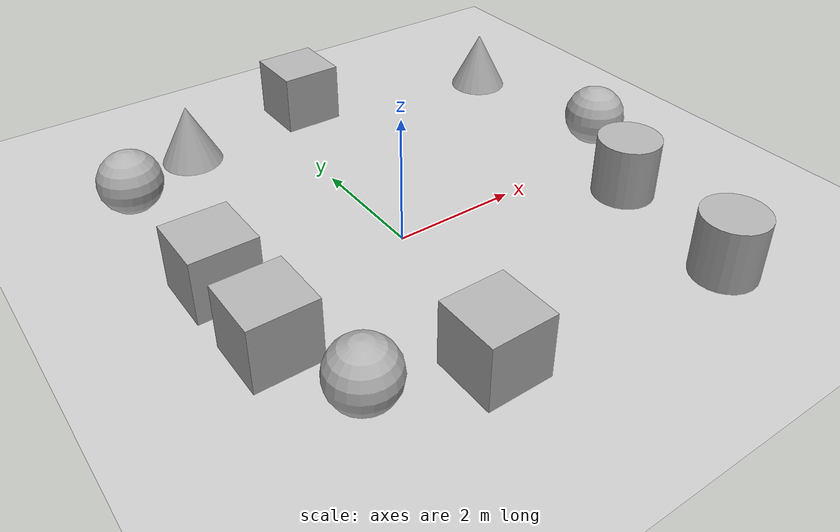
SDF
<sdf version='1.10'>
  <world name='empty'>
    <physics name='1ms' type='ignored'>
      <max_step_size>0.001</max_step_size>
      <real_time_factor>1</real_time_factor>
      <real_time_update_rate>1000</real_time_update_rate>
    </physics>
    <plugin name='gz::sim::systems::Physics' filename='gz-sim-physics-system'/>
    <plugin name='gz::sim::systems::UserCommands' filename='gz-sim-user-commands-system'/>
    <plugin name='gz::sim::systems::SceneBroadcaster' filename='gz-sim-scene-broadcaster-system'/>
    <plugin name='gz::sim::systems::Contact' filename='gz-sim-contact-system'/>
    <gravity>0 0 -9.8000000000000007</gravity>
    <magnetic_field>5.5644999999999998e-06 2.2875799999999999e-05 -4.2388400000000002e-05</magnetic_field>
    <atmosphere type='adiabatic'/>
    <scene>
      <ambient>0.400000006 0.400000006 0.400000006 1</ambient>
      <background>0.699999988 0.699999988 0.699999988 1</background>
      <shadows>true</shadows>
    </scene>
    <model name='ground_plane'>
      <static>true</static>
      <link name='link'>
        <collision name='collision'>
          <geometry>
            <plane>
              <normal>0 0 1</normal>
              <size>100 100</size>
            </plane>
          </geometry>
          <surface>
            <friction>
              <ode/>
            </friction>
            <bounce/>
            <contact/>
          </surface>
        </collision>
        <visual name='visual'>
          <geometry>
            <plane>
              <normal>0 0 1</normal>
              <size>100 100</size>
            </plane>
          </geometry>
          <material>
            <ambient>0.800000012 0.800000012 0.800000012 1</ambient>
            <diffuse>0.800000012 0.800000012 0.800000012 1</diffuse>
            <specular>0.800000012 0.800000012 0.800000012 1</specular>
          </material>
        </visual>
        <pose>0 0 0 0 0 0</pose>
        <inertial>
          <pose>0 0 0 0 0 0</pose>
          <mass>1</mass>
          <inertia>
            <ixx>1</ixx>
            <ixy>0</ixy>
            <ixz>0</ixz>
            <iyy>1</iyy>
            <iyz>0</iyz>
            <izz>1</izz>
          </inertia>
        </inertial>
        <enable_wind>false</enable_wind>
      </link>
      <pose>0 0 0 0 0 0</pose>
      <self_collide>false</self_collide>
    </model>
    <model name='box'>
      <pose>0.68315561753304532 4.2275732439294655 0.5 0 0 0</pose>
      <link name='box_link'>
        <inertial>
          <inertia>
            <ixx>0.16666</ixx>
            <ixy>0</ixy>
            <ixz>0</ixz>
            <iyy>0.16666</iyy>
            <iyz>0</iyz>
            <izz>0.16666</izz>
          </inertia>
          <mass>1</mass>
          <pose>0 0 0 0 0 0</pose>
        </inertial>
        <collision name='box_collision'>
          <geometry>
            <box>
              <size>1 1 1</size>
            </box>
          </geometry>
          <surface>
            <friction>
              <ode/>
            </friction>
            <bounce/>
            <contact/>
          </surface>
        </collision>
        <visual name='box_visual'>
          <geometry>
            <box>
              <size>1 1 1</size>
            </box>
          </geometry>
          <material>
            <ambient>0.300000012 0.300000012 0.300000012 1</ambient>
            <diffuse>0.699999988 0.699999988 0.699999988 1</diffuse>
            <specular>1 1 1 1</specular>
          </material>
        </visual>
        <pose>0 0 0 0 0 0</pose>
        <enable_wind>false</enable_wind>
      </link>
      <static>false</static>
      <self_collide>false</self_collide>
    </model>
    <model name='cone'>
      <pose>4.0975763281066353 3.2909715373316137 0.5 0 0 0</pose>
      <link name='cone_link'>
        <inertial>
          <inertia>
            <ixx>0.074999999999999997</ixx>
            <ixy>0</ixy>
            <ixz>0</ixz>
            <iyy>0.074999999999999997</iyy>
            <iyz>0</iyz>
            <izz>0.074999999999999997</izz>
          </inertia>
          <mass>1</mass>
          <pose>0 0 0 0 0 0</pose>
        </inertial>
        <collision name='cone_collision'>
          <geometry>
            <cone>
              <radius>0.5</radius>
              <length>1</length>
            </cone>
          </geometry>
          <surface>
            <friction>
              <ode/>
            </friction>
            <bounce/>
            <contact/>
          </surface>
        </collision>
        <visual name='cone_visual'>
          <geometry>
            <cone>
              <radius>0.5</radius>
              <length>1</length>
            </cone>
          </geometry>
          <material>
            <ambient>0.300000012 0.300000012 0.300000012 1</ambient>
            <diffuse>0.699999988 0.699999988 0.699999988 1</diffuse>
            <specular>1 1 1 1</specular>
          </material>
        </visual>
        <pose>0 0 0 0 0 0</pose>
        <enable_wind>false</enable_wind>
      </link>
      <static>false</static>
      <self_collide>false</self_collide>
    </model>
    <model name='sphere'>
      <pose>4.3384637299916111 0.42844435307135276 0.5 0 0 0</pose>
      <link name='sphere_link'>
        <inertial>
          <inertia>
            <ixx>0.10000000000000001</ixx>
            <ixy>0</ixy>
            <ixz>0</ixz>
            <iyy>0.10000000000000001</iyy>
            <iyz>0</iyz>
            <izz>0.10000000000000001</izz>
          </inertia>
          <mass>1</mass>
          <pose>0 0 0 0 0 0</pose>
        </inertial>
        <collision name='sphere_collision'>
          <geometry>
            <sphere>
              <radius>0.5</radius>
            </sphere>
          </geometry>
          <surface>
            <friction>
              <ode/>
            </friction>
            <bounce/>
            <contact/>
          </surface>
        </collision>
        <visual name='sphere_visual'>
          <geometry>
            <sphere>
              <radius>0.5</radius>
            </sphere>
          </geometry>
          <material>
            <ambient>0.300000012 0.300000012 0.300000012 1</ambient>
            <diffuse>0.699999988 0.699999988 0.699999988 1</diffuse>
            <specular>1 1 1 1</specular>
          </material>
        </visual>
        <pose>0 0 0 0 0 0</pose>
        <enable_wind>false</enable_wind>
      </link>
      <static>false</static>
      <self_collide>false</self_collide>
    </model>
    <model name='cylinder'>
      <pose>3.2121961628026998 -3.2602752492542688 0.5 0 0 0</pose>
      <link name='cylinder_link'>
        <inertial>
          <inertia>
            <ixx>0.14580000000000001</ixx>
            <ixy>0</ixy>
            <ixz>0</ixz>
            <iyy>0.14580000000000001</iyy>
            <iyz>0</iyz>
            <izz>0.125</izz>
          </inertia>
          <mass>1</mass>
          <pose>0 0 0 0 0 0</pose>
        </inertial>
        <collision name='cylinder_collision'>
          <geometry>
            <cylinder>
              <radius>0.5</radius>
              <length>1</length>
            </cylinder>
          </geometry>
          <surface>
            <friction>
              <ode/>
            </friction>
            <bounce/>
            <contact/>
          </surface>
        </collision>
        <visual name='cylinder_visual'>
          <geometry>
            <cylinder>
              <radius>0.5</radius>
              <length>1</length>
            </cylinder>
          </geometry>
          <material>
            <ambient>0.300000012 0.300000012 0.300000012 1</ambient>
            <diffuse>0.699999988 0.699999988 0.699999988 1</diffuse>
            <specular>1 1 1 1</specular>
          </material>
        </visual>
        <pose>0 0 0 0 0 0</pose>
        <enable_wind>false</enable_wind>
      </link>
      <static>false</static>
      <self_collide>false</self_collide>
    </model>
    <model name='sphere_0'>
      <pose>-2.9238267663955946 3.044195852334592 0.5 0 0 0</pose>
      <link name='sphere_link'>
        <inertial>
          <inertia>
            <ixx>0.10000000000000001</ixx>
            <ixy>0</ixy>
            <ixz>0</ixz>
            <iyy>0.10000000000000001</iyy>
            <iyz>0</iyz>
            <izz>0.10000000000000001</izz>
          </inertia>
          <mass>1</mass>
          <pose>0 0 0 0 0 0</pose>
        </inertial>
        <collision name='sphere_collision'>
          <geometry>
            <sphere>
              <radius>0.5</radius>
            </sphere>
          </geometry>
          <surface>
            <friction>
              <ode/>
            </friction>
            <bounce/>
            <contact/>
          </surface>
        </collision>
        <visual name='sphere_visual'>
          <geometry>
            <sphere>
              <radius>0.5</radius>
            </sphere>
          </geometry>
          <material>
            <ambient>0.300000012 0.300000012 0.300000012 1</ambient>
            <diffuse>0.699999988 0.699999988 0.699999988 1</diffuse>
            <specular>1 1 1 1</specular>
          </material>
        </visual>
        <pose>0 0 0 0 0 0</pose>
        <enable_wind>false</enable_wind>
      </link>
      <static>false</static>
      <self_collide>false</self_collide>
    </model>
    <model name='sphere_1'>
      <pose>-2.2097007168889449 -2.3872972856282129 0.5 0 0 0</pose>
      <link name='sphere_link'>
        <inertial>
          <inertia>
            <ixx>0.10000000000000001</ixx>
            <ixy>0</ixy>
            <ixz>0</ixz>
            <iyy>0.10000000000000001</iyy>
            <iyz>0</iyz>
            <izz>0.10000000000000001</izz>
          </inertia>
          <mass>1</mass>
          <pose>0 0 0 0 0 0</pose>
        </inertial>
        <collision name='sphere_collision'>
          <geometry>
            <sphere>
              <radius>0.5</radius>
            </sphere>
          </geometry>
          <surface>
            <friction>
              <ode/>
            </friction>
            <bounce/>
            <contact/>
          </surface>
        </collision>
        <visual name='sphere_visual'>
          <geometry>
            <sphere>
              <radius>0.5</radius>
            </sphere>
          </geometry>
          <material>
            <ambient>0.300000012 0.300000012 0.300000012 1</ambient>
            <diffuse>0.699999988 0.699999988 0.699999988 1</diffuse>
            <specular>1 1 1 1</specular>
          </material>
        </visual>
        <pose>0 0 0 0 0 0</pose>
        <enable_wind>false</enable_wind>
      </link>
      <static>false</static>
      <self_collide>false</self_collide>
    </model>
    <model name='box_0'>
      <pose>-2.7408238699928074 0.50335782542617402 0.5 0 0 0</pose>
      <link name='box_link'>
        <inertial>
          <inertia>
            <ixx>0.16666</ixx>
            <ixy>0</ixy>
            <ixz>0</ixz>
            <iyy>0.16666</iyy>
            <iyz>0</iyz>
            <izz>0.16666</izz>
          </inertia>
          <mass>1</mass>
          <pose>0 0 0 0 0 0</pose>
        </inertial>
        <collision name='box_collision'>
          <geometry>
            <box>
              <size>1 1 1</size>
            </box>
          </geometry>
          <surface>
            <friction>
              <ode/>
            </friction>
            <bounce/>
            <contact/>
          </surface>
        </collision>
        <visual name='box_visual'>
          <geometry>
            <box>
              <size>1 1 1</size>
            </box>
          </geometry>
          <material>
            <ambient>0.300000012 0.300000012 0.300000012 1</ambient>
            <diffuse>0.699999988 0.699999988 0.699999988 1</diffuse>
            <specular>1 1 1 1</specular>
          </material>
        </visual>
        <pose>0 0 0 0 0 0</pose>
        <enable_wind>false</enable_wind>
      </link>
      <static>false</static>
      <self_collide>false</self_collide>
    </model>
    <model name='box_1'>
      <pose>-0.61381191409205194 -2.8394846851427462 0.5 0 0 0</pose>
      <link name='box_link'>
        <inertial>
          <inertia>
            <ixx>0.16666</ixx>
            <ixy>0</ixy>
            <ixz>0</ixz>
            <iyy>0.16666</iyy>
            <iyz>0</iyz>
            <izz>0.16666</izz>
          </inertia>
          <mass>1</mass>
          <pose>0 0 0 0 0 0</pose>
        </inertial>
        <collision name='box_collision'>
          <geometry>
            <box>
              <size>1 1 1</size>
            </box>
          </geometry>
          <surface>
            <friction>
              <ode/>
            </friction>
            <bounce/>
            <contact/>
          </surface>
        </collision>
        <visual name='box_visual'>
          <geometry>
            <box>
              <size>1 1 1</size>
            </box>
          </geometry>
          <material>
            <ambient>0.300000012 0.300000012 0.300000012 1</ambient>
            <diffuse>0.699999988 0.699999988 0.699999988 1</diffuse>
            <specular>1 1 1 1</specular>
          </material>
        </visual>
        <pose>0 0 0 0 0 0</pose>
        <enable_wind>false</enable_wind>
      </link>
      <static>false</static>
      <self_collide>false</self_collide>
    </model>
    <model name='cone_0'>
      <pose>-1.6113979741255822 3.8652714635452172 0.5 0 0 0</pose>
      <link name='cone_link'>
        <inertial>
          <inertia>
            <ixx>0.074999999999999997</ixx>
            <ixy>0</ixy>
            <ixz>0</ixz>
            <iyy>0.074999999999999997</iyy>
            <iyz>0</iyz>
            <izz>0.074999999999999997</izz>
          </inertia>
          <mass>1</mass>
          <pose>0 0 0 0 0 0</pose>
        </inertial>
        <collision name='cone_collision'>
          <geometry>
            <cone>
              <radius>0.5</radius>
              <length>1</length>
            </cone>
          </geometry>
          <surface>
            <friction>
              <ode/>
            </friction>
            <bounce/>
            <contact/>
          </surface>
        </collision>
        <visual name='cone_visual'>
          <geometry>
            <cone>
              <radius>0.5</radius>
              <length>1</length>
            </cone>
          </geometry>
          <material>
            <ambient>0.300000012 0.300000012 0.300000012 1</ambient>
            <diffuse>0.699999988 0.699999988 0.699999988 1</diffuse>
            <specular>1 1 1 1</specular>
          </material>
        </visual>
        <pose>0 0 0 0 0 0</pose>
        <enable_wind>false</enable_wind>
      </link>
      <static>false</static>
      <self_collide>false</self_collide>
    </model>
    <model name='box_2'>
      <pose>-2.7027088102148764 -1.0036901115407908 0.5 0 0 0</pose>
      <link name='box_link'>
        <inertial>
          <inertia>
            <ixx>0.16666</ixx>
            <ixy>0</ixy>
            <ixz>0</ixz>
            <iyy>0.16666</iyy>
            <iyz>0</iyz>
            <izz>0.16666</izz>
          </inertia>
          <mass>1</mass>
          <pose>0 0 0 0 0 0</pose>
        </inertial>
        <collision name='box_collision'>
          <geometry>
            <box>
              <size>1 1 1</size>
            </box>
          </geometry>
          <surface>
            <friction>
              <ode/>
            </friction>
            <bounce/>
            <contact/>
          </surface>
        </collision>
        <visual name='box_visual'>
          <geometry>
            <box>
              <size>1 1 1</size>
            </box>
          </geometry>
          <material>
            <ambient>0.300000012 0.300000012 0.300000012 1</ambient>
            <diffuse>0.699999988 0.699999988 0.699999988 1</diffuse>
            <specular>1 1 1 1</specular>
          </material>
        </visual>
        <pose>0 0 0 0 0 0</pose>
        <enable_wind>false</enable_wind>
      </link>
      <static>false</static>
      <self_collide>false</self_collide>
    </model>
    <model name='cylinder_0'>
      <pose>3.5659280595963043 -1.0269269159204166 0.5 0 0 0</pose>
      <link name='cylinder_link'>
        <inertial>
          <inertia>
            <ixx>0.14580000000000001</ixx>
            <ixy>0</ixy>
            <ixz>0</ixz>
            <iyy>0.14580000000000001</iyy>
            <iyz>0</iyz>
            <izz>0.125</izz>
          </inertia>
          <mass>1</mass>
          <pose>0 0 0 0 0 0</pose>
        </inertial>
        <collision name='cylinder_collision'>
          <geometry>
            <cylinder>
              <radius>0.5</radius>
              <length>1</length>
            </cylinder>
          </geometry>
          <surface>
            <friction>
              <ode/>
            </friction>
            <bounce/>
            <contact/>
          </surface>
        </collision>
        <visual name='cylinder_visual'>
          <geometry>
            <cylinder>
              <radius>0.5</radius>
              <length>1</length>
            </cylinder>
          </geometry>
          <material>
            <ambient>0.300000012 0.300000012 0.300000012 1</ambient>
            <diffuse>0.699999988 0.699999988 0.699999988 1</diffuse>
            <specular>1 1 1 1</specular>
          </material>
        </visual>
        <pose>0 0 0 0 0 0</pose>
        <enable_wind>false</enable_wind>
      </link>
      <static>false</static>
      <self_collide>false</self_collide>
    </model>
    <light name='sun' type='directional'>
      <pose>0 0 10 0 0 0</pose>
      <cast_shadows>true</cast_shadows>
      <intensity>1</intensity>
      <direction>-0.5 0.10000000000000001 -0.90000000000000002</direction>
      <diffuse>0.800000012 0.800000012 0.800000012 1</diffuse>
      <specular>0.200000003 0.200000003 0.200000003 1</specular>
      <attenuation>
        <range>1000</range>
        <linear>0.01</linear>
        <constant>0.90000000000000002</constant>
        <quadratic>0.001</quadratic>
      </attenuation>
      <spot>
        <inner_angle>0</inner_angle>
        <outer_angle>0</outer_angle>
        <falloff>0</falloff>
      </spot>
    </light>
  </world>
</sdf>
